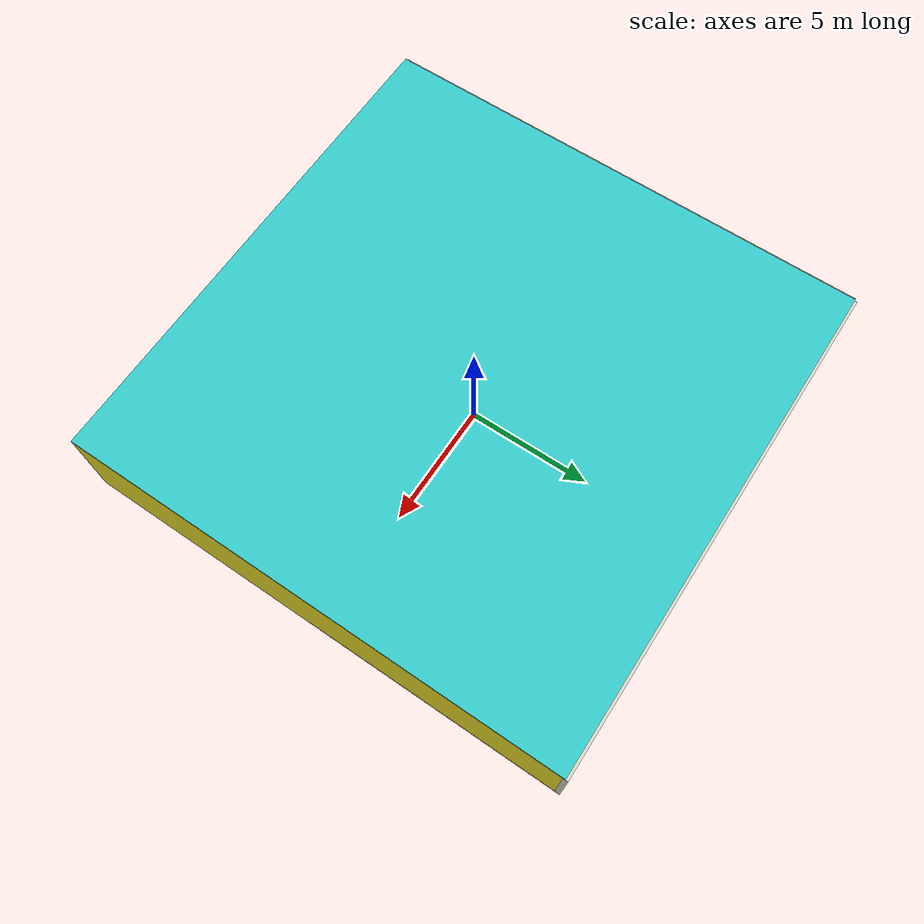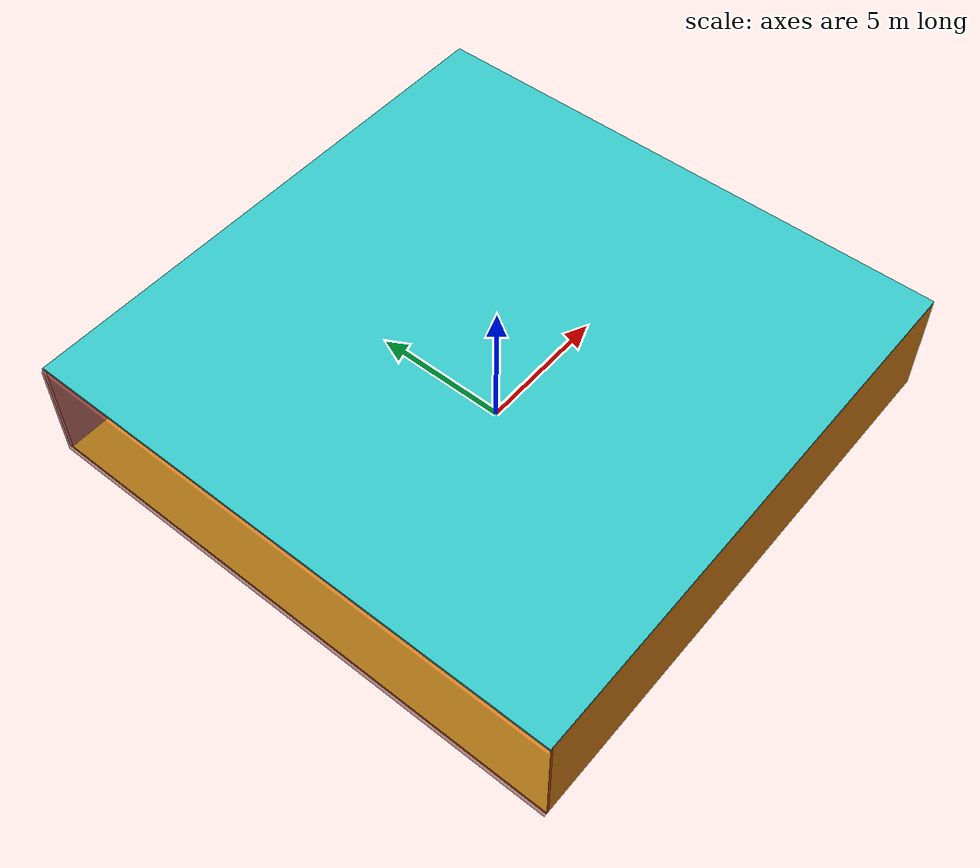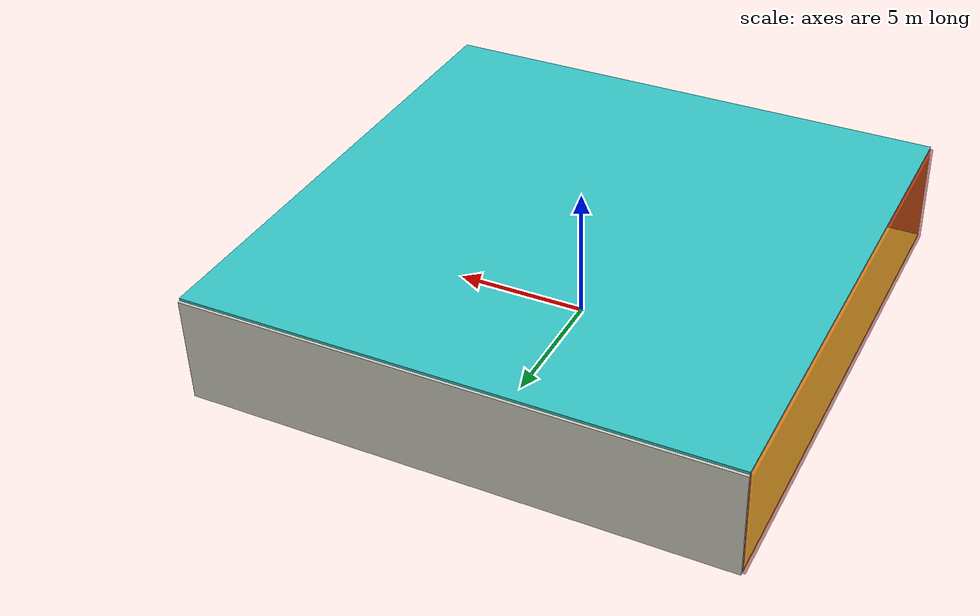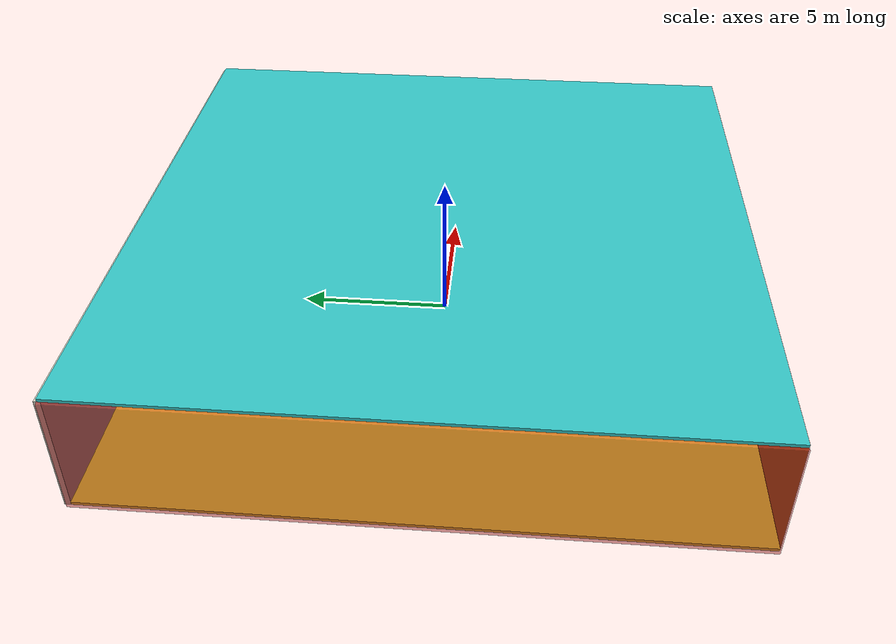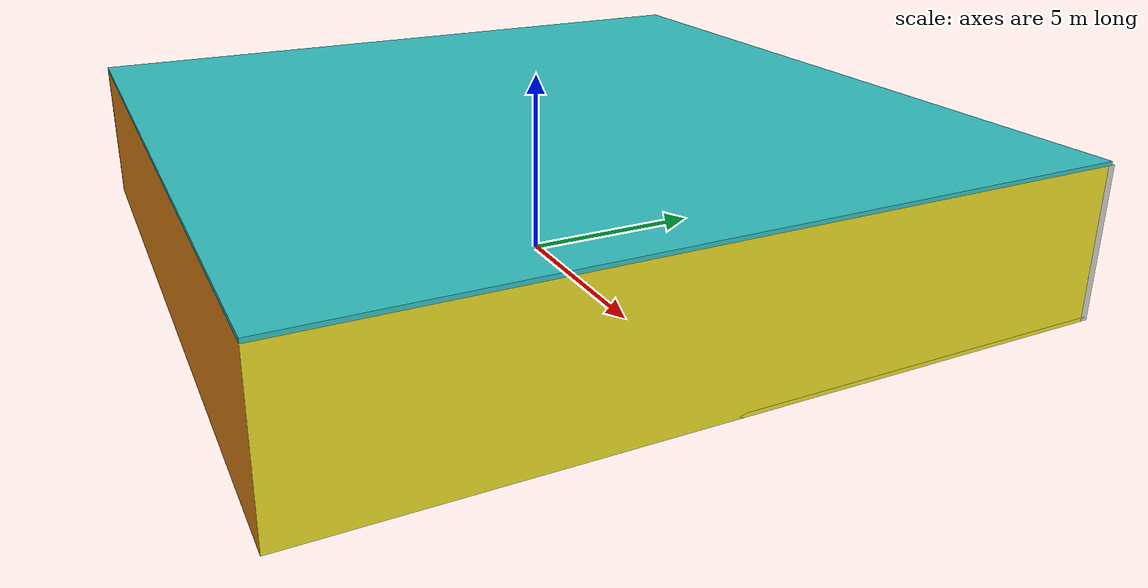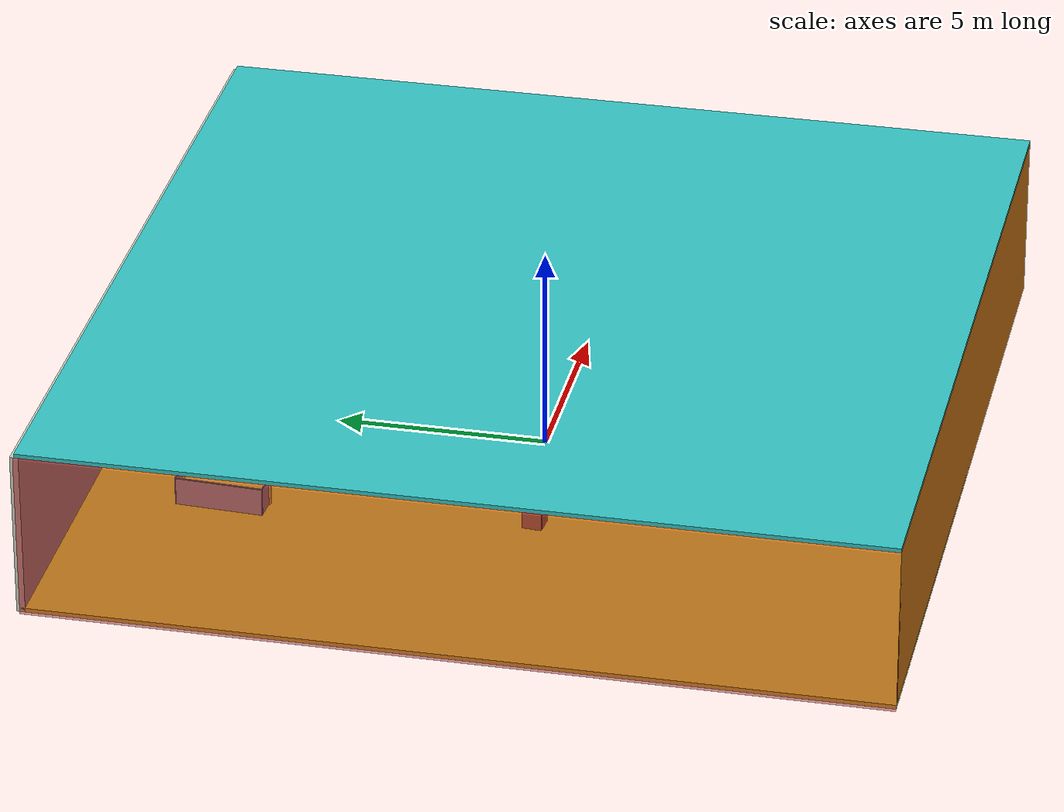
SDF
<sdf version="1.4">
 <world name="default">
  <physics type="ode">
   <max_step_size>0.001</max_step_size>
   <real_time_factor>1</real_time_factor>
   <real_time_update_rate>1000</real_time_update_rate>
   <gravity>0 0 -9.8</gravity>
  </physics>
  <scene><ambient>0.4 0.4 0.4 1</ambient><background>0.7 0.7 0.7 1</background><shadows>1</shadows></scene>
  <model name="Surrounding">
   <static>1</static>
   <link name="Ceiling">
    <collision name="Ceiling_Collision"><geometry><box><size>20 20 0.1</size></box></geometry></collision>
    <visual name="Ceiling_Visual">
     <geometry><box><size>20 20 0.1</size></box></geometry>
     <material>
      <script>
       <uri>file://media/materials/scripts/gazebo.material</uri>
       <name>Gazebo/TurquoiseGlowOutline</name>
      </script>
     </material>
    </visual>
    <pose>0 0 4.05 0 0 0</pose>
   </link>
   <link name="Wall_South">
    <collision name="Wall_South_Collision">
     <geometry><box><size>20 0 4</size></box></geometry>
     <pose>0 0 2 0 -0 0</pose>
    </collision>
    <visual name="Wall_South_Visual">
     <pose>0 0 2 0 -0 0</pose>
     <geometry><box><size>20 0 4</size></box></geometry>
     <material>
      <script><uri>file://media/materials/scripts/gazebo.material</uri><name>Gazebo/Orange</name></script>
     </material>
    </visual>
    <velocity_decay><linear>0</linear><angular>0</angular></velocity_decay>
    <pose>0 -10 0 0 -0 0</pose>
   </link>
   <link name="Wall_East">
    <collision name="Wall_21_Collision">
     <geometry><box><size>20 0 4</size></box></geometry>
     <pose>0 0 2 0 -0 0</pose>
    </collision>
    <visual name="Wall_21_Visual">
     <pose>0 0 2 0 -0 0</pose>
     <geometry><box><size>20 0 4</size></box></geometry>
     <material>
      <script><uri>file://media/materials/scripts/gazebo.material</uri><name>Gazebo/Yellow</name></script>
     </material>
    </visual>
    <velocity_decay><linear>0</linear><angular>0</angular></velocity_decay>
    <pose>10 0 0 0 -0 1.5708</pose>
   </link>
   <link name="Wall_North">
    <collision name="Wall_22_Collision">
     <geometry><box><size>20 0.2 4</size></box></geometry>
     <pose>0 0 2 0 -0 0</pose>
    </collision>
    <visual name="Wall_22_Visual">
     <pose>0 0 2 0 -0 0</pose>
     <geometry><box><size>20 0.2 4</size></box></geometry>
     <material>
      <script><uri>file://media/materials/scripts/gazebo.material</uri><name>Gazebo/PaintedWall</name></script>
     </material>
    </visual>
    <velocity_decay><linear>0</linear><angular>0</angular></velocity_decay>
    <pose>0 10 0 0 -0 0</pose>
   </link>
   <link name="Wall_West">
    <collision name="Wall_23_Collision">
     <geometry><box><size>20 0.2 4</size></box></geometry>
     <pose>0 0 2 0 -0 0</pose>
    </collision>
    <visual name="Wall_23_Visual">
     <pose>0 0 2 0 -0 0</pose>
     <geometry><box><size>20 0.2 4</size></box></geometry>
     <material>
      <script><uri>file://media/materials/scripts/gazebo.material</uri><name>Gazebo/RedTransparent</name></script>
     </material>
    </visual>
    <velocity_decay><linear>0</linear><angular>0</angular></velocity_decay>
    <pose>-10 0 0 0 0 -1.5708</pose>
   </link>
   <link name="Ground_link">
    <collision name="collision">
     <pose>0 0 .05 0 -0 0</pose>
     <geometry><box><size>20 20 0.1</size></box></geometry>
    </collision>
    <visual name="visual">
     <pose>0 0 .05 0 -0 0</pose>
     <geometry><box><size>20 20 0.1</size></box></geometry>
     <material>
      <script><uri>file://media/materials/scripts/gazebo.material</uri><name>Gazebo/Yellow</name></script>
     </material>
    </visual>
   </link>
   <static>1</static>
  </model>
  <spherical_coordinates>
   <surface_model>EARTH_WGS84</surface_model>
   <latitude_deg>0</latitude_deg>
   <longitude_deg>0</longitude_deg>
   <elevation>0</elevation>
   <heading_deg>0</heading_deg>
  </spherical_coordinates>
  <light name="lightball_0" type="diffuse">
   <diffuse>0.8 0.8 0.8 1</diffuse>
   <specular>0.2 0.2 0.2 1</specular>
   <attenuation>
    <range>100</range>
    <constant>0.7</constant>
    <linear>0.01</linear>
    <quadratic>0.001</quadratic>
   </attenuation>
   <direction>-0.5 0.1 -0.9</direction>
   <pose>0.543688543302 7.31667556852 1.60524572807 0 0 0</pose>
  </light>
  <light name="lightball_1" type="diffuse">
   <diffuse>0.8 0.8 0.8 1</diffuse>
   <specular>0.2 0.2 0.2 1</specular>
   <attenuation>
    <range>100</range>
    <constant>0.7</constant>
    <linear>0.01</linear>
    <quadratic>0.001</quadratic>
   </attenuation>
   <direction>-0.5 0.1 -0.9</direction>
   <pose>3.90571565074 -9.57016153367 3.45814287193 0 0 0</pose>
  </light>
  <light name="lightball_2" type="diffuse">
   <diffuse>0.8 0.8 0.8 1</diffuse>
   <specular>0.2 0.2 0.2 1</specular>
   <attenuation>
    <range>100</range>
    <constant>0.7</constant>
    <linear>0.01</linear>
    <quadratic>0.001</quadratic>
   </attenuation>
   <direction>-0.5 0.1 -0.9</direction>
   <pose>-7.95385972344 0.0974266243177 3.59190361736 0 0 0</pose>
  </light>
  <light name="lightball_3" type="diffuse">
   <diffuse>0.8 0.8 0.8 1</diffuse>
   <specular>0.2 0.2 0.2 1</specular>
   <attenuation>
    <range>100</range>
    <constant>0.7</constant>
    <linear>0.01</linear>
    <quadratic>0.001</quadratic>
   </attenuation>
   <direction>-0.5 0.1 -0.9</direction>
   <pose>-1.82825822183 -3.50730786073 0.589075430702 0 0 0</pose>
  </light>
  <light name="lightball_4" type="diffuse">
   <diffuse>0.8 0.8 0.8 1</diffuse>
   <specular>0.2 0.2 0.2 1</specular>
   <attenuation>
    <range>100</range>
    <constant>0.7</constant>
    <linear>0.01</linear>
    <quadratic>0.001</quadratic>
   </attenuation>
   <direction>-0.5 0.1 -0.9</direction>
   <pose>0.770162320228 4.63212120833 3.49455989376 0 0 0</pose>
  </light>
  <light name="lightball_5" type="diffuse">
   <diffuse>0.8 0.8 0.8 1</diffuse>
   <specular>0.2 0.2 0.2 1</specular>
   <attenuation>
    <range>100</range>
    <constant>0.7</constant>
    <linear>0.01</linear>
    <quadratic>0.001</quadratic>
   </attenuation>
   <direction>-0.5 0.1 -0.9</direction>
   <pose>8.04677567679 3.12494263639 2.99303761072 0 0 0</pose>
  </light>
  <light name="lightball_6" type="diffuse">
   <diffuse>0.8 0.8 0.8 1</diffuse>
   <specular>0.2 0.2 0.2 1</specular>
   <attenuation>
    <range>100</range>
    <constant>0.7</constant>
    <linear>0.01</linear>
    <quadratic>0.001</quadratic>
   </attenuation>
   <direction>-0.5 0.1 -0.9</direction>
   <pose>3.84676532419 2.87926421474 3.05245424064 0 0 0</pose>
  </light>
  <light name="lightball_7" type="diffuse">
   <diffuse>0.8 0.8 0.8 1</diffuse>
   <specular>0.2 0.2 0.2 1</specular>
   <attenuation>
    <range>100</range>
    <constant>0.7</constant>
    <linear>0.01</linear>
    <quadratic>0.001</quadratic>
   </attenuation>
   <direction>-0.5 0.1 -0.9</direction>
   <pose>4.19575627554 3.77623155461 1.64852772013 0 0 0</pose>
  </light>
  <include><uri>model://cabinet</uri><pose>-3.953936092 -0.570745190078 0 0 0 3.07257482553</pose></include>
  <include>
   <uri>model://robocup_3Dsim_goal</uri>
   <pose>-4.25580414196 6.70064542823 0 0 0 3.08890089222</pose>
  </include>
  <include><uri>model://table</uri><pose>1.04548285729 -2.43749295534 0 0 0 0.531341124701</pose></include>
  <include><uri>model://cabinet</uri><pose>4.99424229791 -1.11986164789 0 0 0 1.43060702578</pose></include>
  <include>
   <uri>model://robocup_3Dsim_goal</uri>
   <pose>6.97817190561 -4.60708979145 0 0 0 1.10822490457</pose>
  </include>
 </world>
</sdf>

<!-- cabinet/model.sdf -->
<sdf version="1.5">
  <model name="cabinet">
    <static>true</static>
    <link name="cabinet_bottom_plate">
      <inertial>
        <pose>0 0 -1 0 0 0</pose>
        <inertia>
          <ixx>2.050000</ixx>
          <ixy>0</ixy>
          <ixz>0</ixz>
          <iyy>2.050000</iyy>
          <iyz>0</iyz>
          <izz>2.050000</izz>
        </inertia>
        <mass>25.000000</mass>
      </inertial>
      <collision name="cabinet_bottom_plate_geom">
        <pose>0 0 0.010000 0 0 0</pose>
        <geometry>
          <box>
            <size>0.450000 0.450000 0.020000</size>
          </box>
        </geometry>
      </collision>
      <visual name="cabinet_bottom_plate_geom_visual">
        <pose>0 0 0.010000 0 0 0</pose>
        <geometry>
          <box>
            <size>0.450000 0.450000 0.020000</size>
          </box>
        </geometry>
        <material>
          <script>
            <uri>model://media/materials/scripts/gazebo.material</uri>
            <name>Gazebo/Wood</name>
          </script>
        </material>
      </visual>
      <collision name="cabinet_bottom_plate_geom_cabinet_back_plate">
        <pose>0.235000 0 0.510000 0 0 0</pose>
        <geometry>
          <box>
            <size>0.020000 0.450000 1.020000</size>
          </box>
        </geometry>
      </collision>
      <visual name="cabinet_bottom_plate_geom_cabinet_back_plate_visual">
        <pose>0.235000 0 0.510000 0 0 0</pose>
        <geometry>
          <box>
            <size>0.020000 0.450000 1.020000</size>
          </box>
        </geometry>
        <material>
          <script>
            <uri>model://media/materials/scripts/gazebo.material</uri>
            <name>Gazebo/Wood</name>
          </script>
        </material>
      </visual>
      <collision name="cabinet_bottom_plate_geom_cabinet_left_plate">
        <pose>0 0.235000 0.510000 0 0 0</pose>
        <geometry>
          <box>
            <size>0.450000 0.020000 1.020000</size>
          </box>
        </geometry>
      </collision>
      <visual name="cabinet_bottom_plate_geom_cabinet_left_plate_visual">
        <pose>0 0.235000 0.510000 0 0 0</pose>
        <geometry>
          <box>
            <size>0.450000 0.020000 1.020000</size>
          </box>
        </geometry>
        <material>
          <script>
            <uri>model://media/materials/scripts/gazebo.material</uri>
            <name>Gazebo/Wood</name>
          </script>
        </material>
      </visual>
      <collision name="cabinet_bottom_plate_geom_cabinet_middle_plate">
        <pose>0 0 0.510000 0 0 0</pose>
        <geometry>
          <box>
            <size>0.450000 0.450000 0.020000</size>
          </box>
        </geometry>
      </collision>
      <visual name="cabinet_bottom_plate_geom_cabinet_middle_plate_visual">
        <pose>0 0 0.510000 0 0 0</pose>
        <geometry>
          <box>
            <size>0.450000 0.450000 0.020000</size>
          </box>
        </geometry>
        <material>
          <script>
            <uri>model://media/materials/scripts/gazebo.material</uri>
            <name>Gazebo/Wood</name>
          </script>
        </material>
      </visual>
      <collision name="cabinet_bottom_plate_geom_cabinet_right_plate">
        <pose>0 -0.235000 0.510000 0 0 0</pose>
        <geometry>
          <box>
            <size>0.450000 0.020000 1.020000</size>
          </box>
        </geometry>
      </collision>
      <visual name="cabinet_bottom_plate_geom_cabinet_right_plate_visual">
        <pose>0 -0.235000 0.510000 0 0 0</pose>
        <geometry>
          <box>
            <size>0.450000 0.020000 1.020000</size>
          </box>
        </geometry>
        <material>
          <script>
            <uri>model://media/materials/scripts/gazebo.material</uri>
            <name>Gazebo/Wood</name>
          </script>
        </material>
      </visual>
      <collision name="cabinet_bottom_plate_geom_cabinet_top_plate">
        <pose>0 0 1.010000 0 0 0</pose>
        <geometry>
          <box>
            <size>0.450000 0.450000 0.020000</size>
          </box>
        </geometry>
      </collision>
      <visual name="cabinet_bottom_plate_geom_cabinet_top_plate_visual">
        <pose>0 0 1.010000 0 0 0</pose>
        <geometry>
          <box>
            <size>0.450000 0.450000 0.020000</size>
          </box>
        </geometry>
        <material>
          <script>
            <uri>model://media/materials/scripts/gazebo.material</uri>
            <name>Gazebo/Wood</name>
          </script>
        </material>
      </visual>
    </link>
  </model>
</sdf>

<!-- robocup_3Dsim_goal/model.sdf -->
<sdf version="1.5">
  <model name="robocup_3d_goal">
    <static>true</static>
    <link name="left_post">
      <pose>0 1.05 0.45 0 0 0</pose>
      <collision name="collision">
        <geometry>
          <cylinder>
            <radius>0.05</radius>
            <length>0.9</length>
          </cylinder>
        </geometry>
      </collision>
      <visual name="visual">
        <geometry>
          <cylinder>
            <radius>0.05</radius>
            <length>0.9</length>
          </cylinder>
        </geometry>
        <material>
          <script>
            <uri>file://media/materials/scripts/gazebo.material</uri>
            <name>Gazebo/ZincYellow</name>
          </script>
        </material>
      </visual>
    </link>
    <link name="left_support_horiz_lower">
      <pose>0.30 1.05 0.01 0 0 0</pose>
      <collision name="collision">
        <geometry>
          <box>
            <size>0.50 0.02 0.02</size>
          </box>
        </geometry>
      </collision>
      <visual name="visual">
        <geometry>
          <box>
            <size>0.50 0.02 0.02</size>
          </box>
        </geometry>
        <material>
          <script>
            <uri>file://media/materials/scripts/gazebo.material</uri>
            <name>Gazebo/White</name>
          </script>
        </material>
      </visual>
    </link>
    <link name="left_support_horiz_upper">
      <pose>0.30 1.05 0.79 0 0 0</pose>
      <collision name="collision">
        <geometry>
          <box>
            <size>0.50 0.02 0.02</size>
          </box>
        </geometry>
      </collision>
      <visual name="visual">
        <geometry>
          <box>
            <size>0.50 0.02 0.02</size>
          </box>
        </geometry>
        <material>
          <script>
            <uri>file://media/materials/scripts/gazebo.material</uri>
            <name>Gazebo/White</name>
          </script>
        </material>
      </visual>
    </link>
    <link name="left_support_vertical">
      <pose>0.56 1.05 0.4 0 1.5708 0</pose>
      <collision name="collision">
        <geometry>
          <box>
            <size>0.80 0.02 0.02</size>
          </box>
        </geometry>
      </collision>
      <visual name="visual">
        <geometry>
          <box>
            <size>0.80 0.02 0.02</size>
          </box>
        </geometry>
        <material>
          <script>
            <uri>file://media/materials/scripts/gazebo.material</uri>
            <name>Gazebo/White</name>
          </script>
        </material>
      </visual>
    </link>
    <link name="right_support_horiz_lower">
      <pose>0.30 -1.05 0.01 0 0 0</pose>
      <collision name="collision">
        <geometry>
          <box>
            <size>0.50 0.02 0.02</size>
          </box>
        </geometry>
      </collision>
      <visual name="visual">
        <geometry>
          <box>
            <size>0.50 0.02 0.02</size>
          </box>
        </geometry>
        <material>
          <script>
            <uri>file://media/materials/scripts/gazebo.material</uri>
            <name>Gazebo/White</name>
          </script>
        </material>
      </visual>
    </link>
    <link name="right_support_horiz_upper">
      <pose>0.30 -1.05 0.79 0 0 0</pose>
      <collision name="collision">
        <geometry>
          <box>
            <size>0.50 0.02 0.02</size>
          </box>
        </geometry>
      </collision>
      <visual name="visual">
        <geometry>
          <box>
            <size>0.50 0.02 0.02</size>
          </box>
        </geometry>
        <material>
          <script>
            <uri>file://media/materials/scripts/gazebo.material</uri>
            <name>Gazebo/White</name>
          </script>
        </material>
      </visual>
    </link>
    <link name="right_support_vertical">
      <pose>0.56 -1.05 0.4 0 1.5708 0</pose>
      <collision name="collision">
        <geometry>
          <box>
            <size>0.80 0.02 0.02</size>
          </box>
        </geometry>
      </collision>
      <visual name="visual">
        <geometry>
          <box>
            <size>0.80 0.02 0.02</size>
          </box>
        </geometry>
        <material>
          <script>
            <uri>file://media/materials/scripts/gazebo.material</uri>
            <name>Gazebo/White</name>
          </script>
        </material>
      </visual>
    </link>
    <link name="center_support_horiz_lower">
      <pose>0.56 0 0.01 0 1.5708 0</pose>
      <collision name="collision">
        <geometry>
          <box>
            <size>0.02 2.08 0.02</size>
          </box>
        </geometry>
      </collision>
      <visual name="visual">
        <geometry>
          <box>
            <size>0.02 2.08 0.02</size>
          </box>
        </geometry>
        <material>
          <script>
            <uri>file://media/materials/scripts/gazebo.material</uri>
            <name>Gazebo/White</name>
          </script>
        </material>
      </visual>
    </link>
    <link name="center_support_horiz_upper">
      <pose>0.56 0 0.79 0 1.5708 0</pose>
      <collision name="collision">
        <geometry>
          <box>
            <size>0.02 2.08 0.02</size>
          </box>
        </geometry>
      </collision>
      <visual name="visual">
        <geometry>
          <box>
            <size>0.02 2.08 0.02</size>
          </box>
        </geometry>
        <material>
          <script>
            <uri>file://media/materials/scripts/gazebo.material</uri>
            <name>Gazebo/White</name>
          </script>
        </material>
      </visual>
    </link>
    <link name="right_post">
      <pose>0 -1.05 0.45 0 0 0</pose>
      <collision name="collision">
        <geometry>
          <cylinder>
            <radius>0.05</radius>
            <length>0.9</length>
          </cylinder>
        </geometry>
      </collision>
      <visual name="visual">
        <geometry>
          <cylinder>
            <radius>0.05</radius>
            <length>0.9</length>
          </cylinder>
        </geometry>
        <material>
          <script>
            <uri>file://media/materials/scripts/gazebo.material</uri>
            <name>Gazebo/ZincYellow</name>
          </script>
        </material>
      </visual>
    </link>
    <link name="crossbar">
      <pose>0 0 0.85 1.57 1.57 0</pose>
      <collision name="collision">
        <geometry>
          <cylinder>
            <radius>0.05</radius>
            <length>2.0</length>
          </cylinder>
        </geometry>
      </collision>
      <visual name="visual">
        <geometry>
          <cylinder>
            <radius>0.05</radius>
            <length>2.0</length>
          </cylinder>
        </geometry>
        <material>
          <script>
            <uri>file://media/materials/scripts/gazebo.material</uri>
            <name>Gazebo/ZincYellow</name>
          </script>
        </material>
      </visual>
    </link>
    <link name="center_net">
      <pose>0.56 0 0.40 0 0 0</pose>
      <collision name="collision">
        <geometry>
          <box>
            <size>0.01 2.1 0.80</size>
          </box>
        </geometry>
      </collision>
      <visual name="visual">
        <geometry>
          <box>
            <size>0.01 2.1 0.80</size>
          </box>
        </geometry>
        <material>
          <script>
            <uri>model://../model_source/models/robocup09_spl_field/materials/scripts/</uri>
            <uri>model://../model_source/models/robocup09_spl_field/materials/textures/</uri>
            <name>RoboCup/Net</name>
          </script>
        </material>
      </visual>
    </link>
    <link name="left_net">
      <pose>0.30 1.05 0.40 0 0 0</pose>
      <collision name="collision">
        <geometry>
          <box>
            <size>0.50 0.01 0.76</size>
          </box>
        </geometry>
      </collision>
      <visual name="visual">
        <geometry>
          <box>
            <size>0.50 0.01 0.76</size>
          </box>
        </geometry>
        <material>
          <script>
            <uri>model://../model_source/models/robocup09_spl_field/materials/scripts/</uri>
            <uri>model://../model_source/models/robocup09_spl_field/materials/textures/</uri>
            <name>RoboCup/Net</name>
          </script>
        </material>
      </visual>
    </link>
    <link name="right_net">
      <pose>0.30 -1.05 0.40 0 0 0</pose>
      <collision name="collision">
        <geometry>
          <box>
            <size>0.50 0.01 0.76</size>
          </box>
        </geometry>
      </collision>
      <visual name="visual">
        <geometry>
          <box>
            <size>0.50 0.01 0.76</size>
          </box>
        </geometry>
        <material>
          <script>
            <uri>model://../model_source/models/robocup09_spl_field/materials/scripts/</uri>
            <uri>model://../model_source/models/robocup09_spl_field/materials/textures/</uri>
            <name>RoboCup/Net</name>
          </script>
        </material>
      </visual>
    </link>
  </model>
</sdf>

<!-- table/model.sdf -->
<sdf version="1.5">
  <model name="table">
    <static>true</static>
    <link name="link">
      <collision name="surface">
        <pose>0 0 1.0 0 0 0</pose>
        <geometry>
          <box>
            <size>1.5 0.8 0.03</size>
          </box>
        </geometry>
        <surface>
          <friction>
            <ode>
              <mu>0.6</mu>
              <mu2>0.6</mu2>
            </ode>
          </friction>
        </surface>
      </collision>
      <visual name="visual1">
        <pose>0 0 1.0 0 0 0</pose>
        <geometry>
          <box>
            <size>1.5 0.8 0.03</size>
          </box>
        </geometry>
        <material>
          <script>
            <uri>model://media/materials/scripts/gazebo.material</uri>
            <name>Gazebo/Wood</name>
          </script>
        </material>
      </visual>
      <collision name="front_left_leg">
        <pose>0.68 0.38 0.5 0 0 0</pose>
        <geometry>
          <cylinder>
            <radius>0.02</radius>
            <length>1.0</length>
          </cylinder>
        </geometry>
      </collision>
      <visual name="front_left_leg">
        <pose>0.68 0.38 0.5 0 0 0</pose>
        <geometry>
          <cylinder>
            <radius>0.02</radius>
            <length>1.0</length>
          </cylinder>
        </geometry>
        <material>
          <script>
            <uri>model://media/materials/scripts/gazebo.material</uri>
            <name>Gazebo/Grey</name>
          </script>
        </material>
      </visual>
      <collision name="front_right_leg">
        <pose>0.68 -0.38 0.5 0 0 0</pose>
        <geometry>
          <cylinder>
            <radius>0.02</radius>
            <length>1.0</length>
          </cylinder>
        </geometry>
      </collision>
      <visual name="front_right_leg">
        <pose>0.68 -0.38 0.5 0 0 0</pose>
        <geometry>
          <cylinder>
            <radius>0.02</radius>
            <length>1.0</length>
          </cylinder>
        </geometry>
        <material>
          <script>
            <uri>model://media/materials/scripts/gazebo.material</uri>
            <name>Gazebo/Grey</name>
          </script>
        </material>
      </visual>
      <collision name="back_right_leg">
        <pose>-0.68 -0.38 0.5 0 0 0</pose>
        <geometry>
          <cylinder>
            <radius>0.02</radius>
            <length>1.0</length>
          </cylinder>
        </geometry>
      </collision>
      <visual name="back_right_leg">
        <pose>-0.68 -0.38 0.5 0 0 0</pose>
        <geometry>
          <cylinder>
            <radius>0.02</radius>
            <length>1.0</length>
          </cylinder>
        </geometry>
        <material>
          <script>
            <uri>model://media/materials/scripts/gazebo.material</uri>
            <name>Gazebo/Grey</name>
          </script>
        </material>
      </visual>
      <collision name="back_left_leg">
        <pose>-0.68 0.38 0.5 0 0 0</pose>
        <geometry>
          <cylinder>
            <radius>0.02</radius>
            <length>1.0</length>
          </cylinder>
        </geometry>
      </collision>
      <visual name="back_left_leg">
        <pose>-0.68 0.38 0.5 0 0 0</pose>
        <geometry>
          <cylinder>
            <radius>0.02</radius>
            <length>1.0</length>
          </cylinder>
        </geometry>
        <material>
          <script>
            <uri>model://media/materials/scripts/gazebo.material</uri>
            <name>Gazebo/Grey</name>
          </script>
        </material>
      </visual>
    </link>
  </model>
</sdf>
